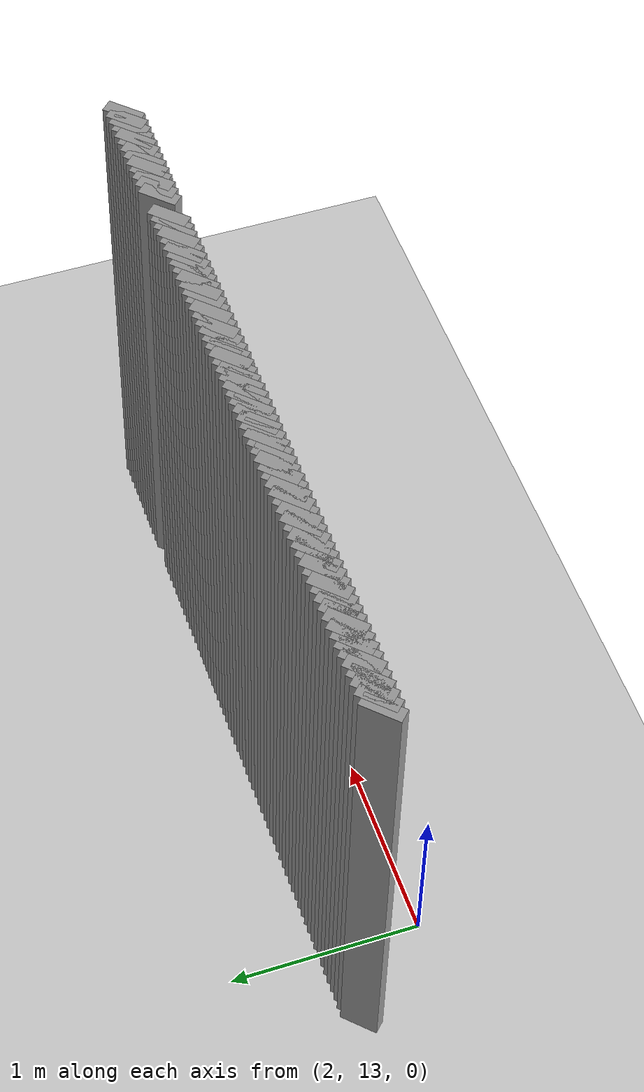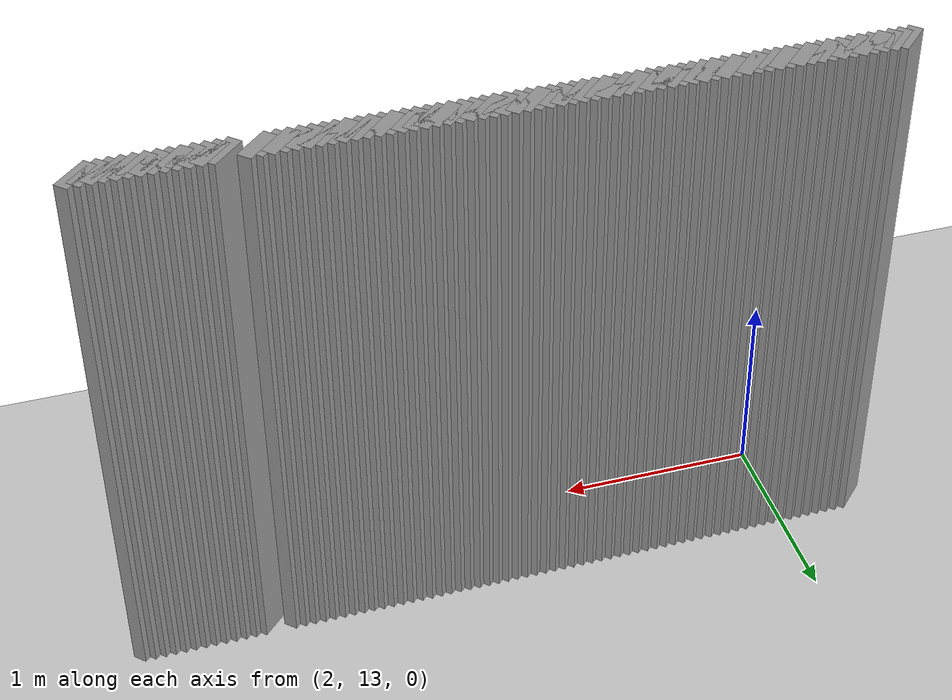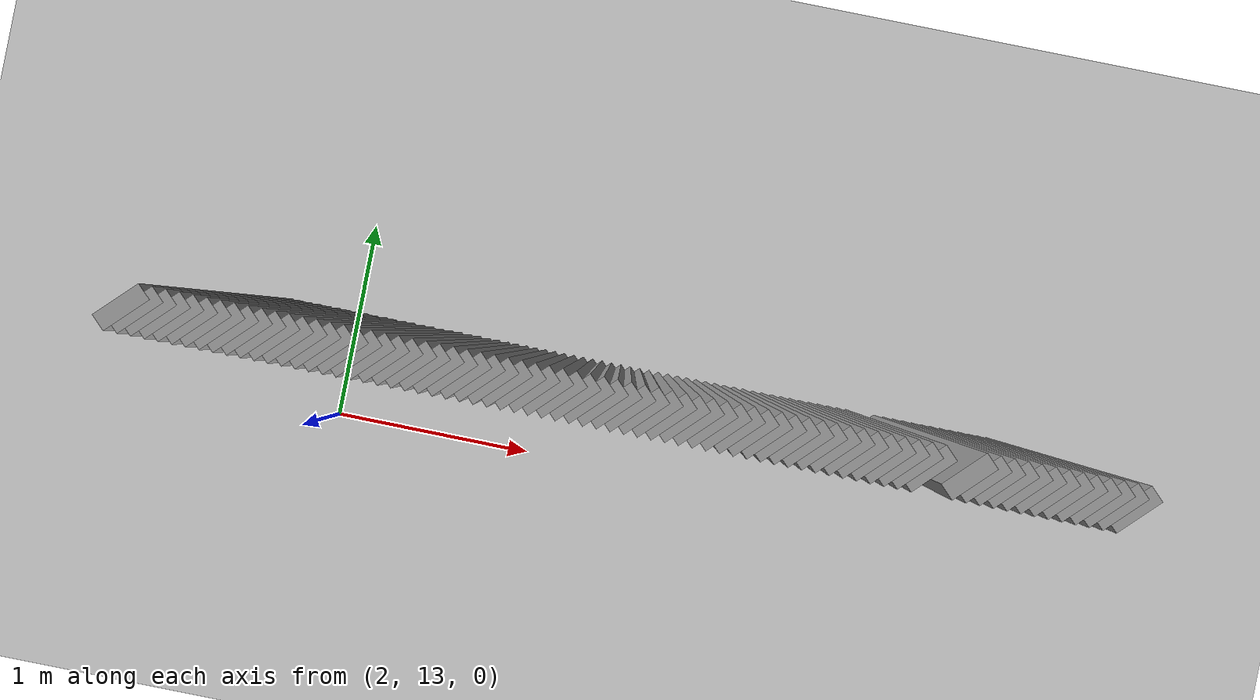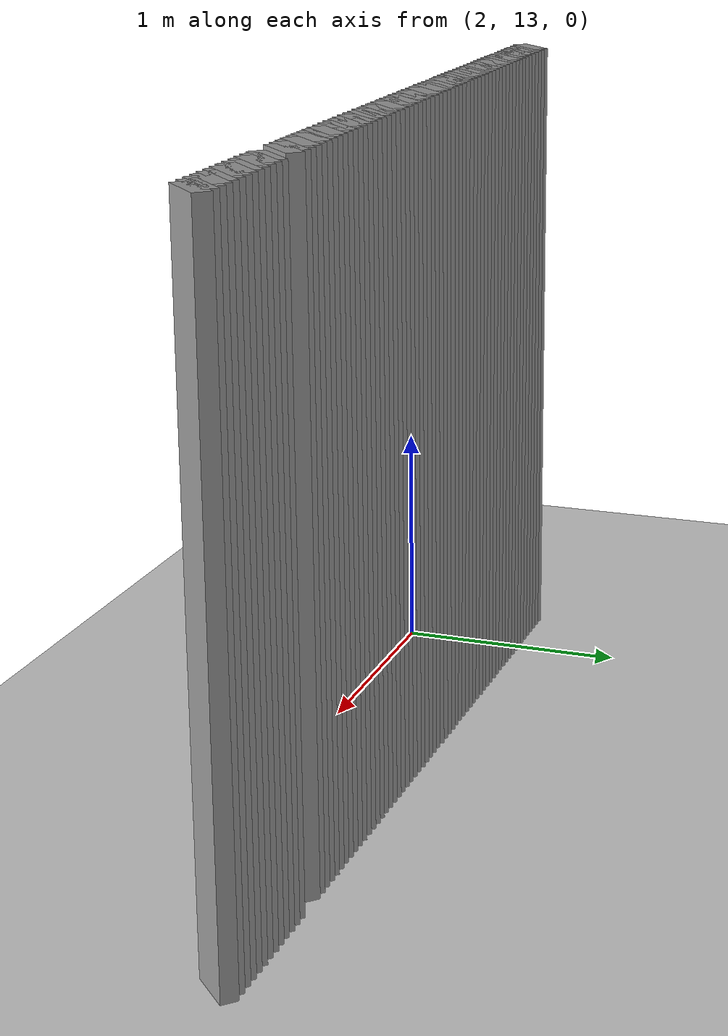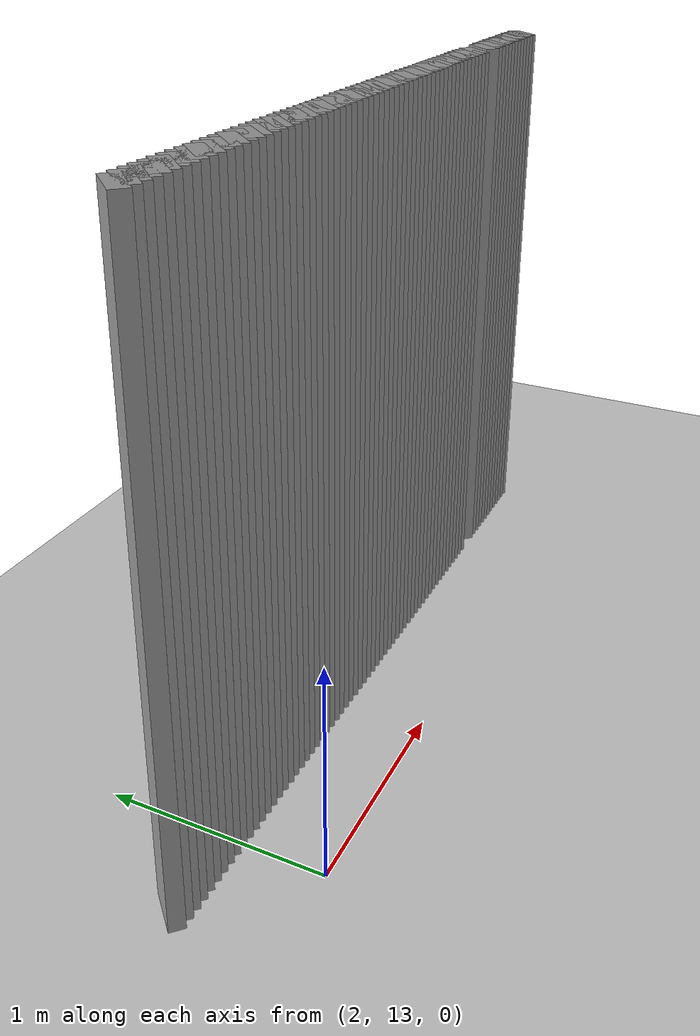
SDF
<sdf version="1.5">
 <world name="default">
  <include><uri>model://ground_plane</uri></include>
  <include><uri>model://sun</uri></include>
  <model name="grey_wall_1037">
   <static>1</static>
   <link name="link">
    <pose>1.6 13.450000000000001  1.4 0 0 -0.7853981633974572</pose>
    <collision name="collision">
     <geometry><box><size>0.07071067811865513 .2  2.8</size></box></geometry>
    </collision>
    <visual name="visual">
     <cast_shadows>0</cast_shadows>
     <geometry><box><size>0.07071067811865513 .2  2.8</size></box></geometry>
     <material>
      <script>
       <uri>model://grey_wall/materials/scripts</uri>
       <uri>model://grey_wall/materials/textures</uri>
       <name>vrc/grey_wall</name>
      </script>
     </material>
    </visual>
   </link>
  </model>
  <model name="grey_wall_1038">
   <static>1</static>
   <link name="link">
    <pose>1.6500000000000001 13.450000000000001  1.4 0 0 -0.7853981633974572</pose>
    <collision name="collision">
     <geometry><box><size>0.07071067811865513 .2  2.8</size></box></geometry>
    </collision>
    <visual name="visual">
     <cast_shadows>0</cast_shadows>
     <geometry><box><size>0.07071067811865513 .2  2.8</size></box></geometry>
     <material>
      <script>
       <uri>model://grey_wall/materials/scripts</uri>
       <uri>model://grey_wall/materials/textures</uri>
       <name>vrc/grey_wall</name>
      </script>
     </material>
    </visual>
   </link>
  </model>
  <model name="grey_wall_1039">
   <static>1</static>
   <link name="link">
    <pose>1.7000000000000002 13.450000000000001  1.4 0 0 -0.7853981633974572</pose>
    <collision name="collision">
     <geometry><box><size>0.07071067811865513 .2  2.8</size></box></geometry>
    </collision>
    <visual name="visual">
     <cast_shadows>0</cast_shadows>
     <geometry><box><size>0.07071067811865513 .2  2.8</size></box></geometry>
     <material>
      <script>
       <uri>model://grey_wall/materials/scripts</uri>
       <uri>model://grey_wall/materials/textures</uri>
       <name>vrc/grey_wall</name>
      </script>
     </material>
    </visual>
   </link>
  </model>
  <model name="grey_wall_1040">
   <static>1</static>
   <link name="link">
    <pose>1.75 13.450000000000001  1.4 0 0 -0.7853981633974572</pose>
    <collision name="collision">
     <geometry><box><size>0.07071067811865513 .2  2.8</size></box></geometry>
    </collision>
    <visual name="visual">
     <cast_shadows>0</cast_shadows>
     <geometry><box><size>0.07071067811865513 .2  2.8</size></box></geometry>
     <material>
      <script>
       <uri>model://grey_wall/materials/scripts</uri>
       <uri>model://grey_wall/materials/textures</uri>
       <name>vrc/grey_wall</name>
      </script>
     </material>
    </visual>
   </link>
  </model>
  <model name="grey_wall_1041">
   <static>1</static>
   <link name="link">
    <pose>1.8 13.450000000000001  1.4 0 0 -0.7853981633974572</pose>
    <collision name="collision">
     <geometry><box><size>0.07071067811865513 .2  2.8</size></box></geometry>
    </collision>
    <visual name="visual">
     <cast_shadows>0</cast_shadows>
     <geometry><box><size>0.07071067811865513 .2  2.8</size></box></geometry>
     <material>
      <script>
       <uri>model://grey_wall/materials/scripts</uri>
       <uri>model://grey_wall/materials/textures</uri>
       <name>vrc/grey_wall</name>
      </script>
     </material>
    </visual>
   </link>
  </model>
  <model name="grey_wall_1042">
   <static>1</static>
   <link name="link">
    <pose>1.85 13.450000000000001  1.4 0 0 -0.7853981633974572</pose>
    <collision name="collision">
     <geometry><box><size>0.07071067811865513 .2  2.8</size></box></geometry>
    </collision>
    <visual name="visual">
     <cast_shadows>0</cast_shadows>
     <geometry><box><size>0.07071067811865513 .2  2.8</size></box></geometry>
     <material>
      <script>
       <uri>model://grey_wall/materials/scripts</uri>
       <uri>model://grey_wall/materials/textures</uri>
       <name>vrc/grey_wall</name>
      </script>
     </material>
    </visual>
   </link>
  </model>
  <model name="grey_wall_1043">
   <static>1</static>
   <link name="link">
    <pose>1.9000000000000001 13.450000000000001  1.4 0 0 -0.7853981633974572</pose>
    <collision name="collision">
     <geometry><box><size>0.07071067811865513 .2  2.8</size></box></geometry>
    </collision>
    <visual name="visual">
     <cast_shadows>0</cast_shadows>
     <geometry><box><size>0.07071067811865513 .2  2.8</size></box></geometry>
     <material>
      <script>
       <uri>model://grey_wall/materials/scripts</uri>
       <uri>model://grey_wall/materials/textures</uri>
       <name>vrc/grey_wall</name>
      </script>
     </material>
    </visual>
   </link>
  </model>
  <model name="grey_wall_1044">
   <static>1</static>
   <link name="link">
    <pose>1.9500000000000002 13.450000000000001  1.4 0 0 -0.7853981633974572</pose>
    <collision name="collision">
     <geometry><box><size>0.07071067811865513 .2  2.8</size></box></geometry>
    </collision>
    <visual name="visual">
     <cast_shadows>0</cast_shadows>
     <geometry><box><size>0.07071067811865513 .2  2.8</size></box></geometry>
     <material>
      <script>
       <uri>model://grey_wall/materials/scripts</uri>
       <uri>model://grey_wall/materials/textures</uri>
       <name>vrc/grey_wall</name>
      </script>
     </material>
    </visual>
   </link>
  </model>
  <model name="grey_wall_1045">
   <static>1</static>
   <link name="link">
    <pose>2.0 13.450000000000001  1.4 0 0 -0.7853981633974572</pose>
    <collision name="collision">
     <geometry><box><size>0.07071067811865513 .2  2.8</size></box></geometry>
    </collision>
    <visual name="visual">
     <cast_shadows>0</cast_shadows>
     <geometry><box><size>0.07071067811865513 .2  2.8</size></box></geometry>
     <material>
      <script>
       <uri>model://grey_wall/materials/scripts</uri>
       <uri>model://grey_wall/materials/textures</uri>
       <name>vrc/grey_wall</name>
      </script>
     </material>
    </visual>
   </link>
  </model>
  <model name="grey_wall_1046">
   <static>1</static>
   <link name="link">
    <pose>2.0500000000000003 13.450000000000001  1.4 0 0 -0.7853981633974572</pose>
    <collision name="collision">
     <geometry><box><size>0.07071067811865513 .2  2.8</size></box></geometry>
    </collision>
    <visual name="visual">
     <cast_shadows>0</cast_shadows>
     <geometry><box><size>0.07071067811865513 .2  2.8</size></box></geometry>
     <material>
      <script>
       <uri>model://grey_wall/materials/scripts</uri>
       <uri>model://grey_wall/materials/textures</uri>
       <name>vrc/grey_wall</name>
      </script>
     </material>
    </visual>
   </link>
  </model>
  <model name="grey_wall_1047">
   <static>1</static>
   <link name="link">
    <pose>2.1 13.450000000000001  1.4 0 0 -0.7853981633974572</pose>
    <collision name="collision">
     <geometry><box><size>0.07071067811865513 .2  2.8</size></box></geometry>
    </collision>
    <visual name="visual">
     <cast_shadows>0</cast_shadows>
     <geometry><box><size>0.07071067811865513 .2  2.8</size></box></geometry>
     <material>
      <script>
       <uri>model://grey_wall/materials/scripts</uri>
       <uri>model://grey_wall/materials/textures</uri>
       <name>vrc/grey_wall</name>
      </script>
     </material>
    </visual>
   </link>
  </model>
  <model name="grey_wall_1048">
   <static>1</static>
   <link name="link">
    <pose>2.15 13.450000000000001  1.4 0 0 -0.7853981633974572</pose>
    <collision name="collision">
     <geometry><box><size>0.07071067811865513 .2  2.8</size></box></geometry>
    </collision>
    <visual name="visual">
     <cast_shadows>0</cast_shadows>
     <geometry><box><size>0.07071067811865513 .2  2.8</size></box></geometry>
     <material>
      <script>
       <uri>model://grey_wall/materials/scripts</uri>
       <uri>model://grey_wall/materials/textures</uri>
       <name>vrc/grey_wall</name>
      </script>
     </material>
    </visual>
   </link>
  </model>
  <model name="grey_wall_1049">
   <static>1</static>
   <link name="link">
    <pose>2.2 13.450000000000001  1.4 0 0 -0.7853981633974572</pose>
    <collision name="collision">
     <geometry><box><size>0.07071067811865513 .2  2.8</size></box></geometry>
    </collision>
    <visual name="visual">
     <cast_shadows>0</cast_shadows>
     <geometry><box><size>0.07071067811865513 .2  2.8</size></box></geometry>
     <material>
      <script>
       <uri>model://grey_wall/materials/scripts</uri>
       <uri>model://grey_wall/materials/textures</uri>
       <name>vrc/grey_wall</name>
      </script>
     </material>
    </visual>
   </link>
  </model>
  <model name="grey_wall_1050">
   <static>1</static>
   <link name="link">
    <pose>2.25 13.450000000000001  1.4 0 0 -0.7853981633974572</pose>
    <collision name="collision">
     <geometry><box><size>0.07071067811865513 .2  2.8</size></box></geometry>
    </collision>
    <visual name="visual">
     <cast_shadows>0</cast_shadows>
     <geometry><box><size>0.07071067811865513 .2  2.8</size></box></geometry>
     <material>
      <script>
       <uri>model://grey_wall/materials/scripts</uri>
       <uri>model://grey_wall/materials/textures</uri>
       <name>vrc/grey_wall</name>
      </script>
     </material>
    </visual>
   </link>
  </model>
  <model name="grey_wall_1051">
   <static>1</static>
   <link name="link">
    <pose>2.3000000000000003 13.450000000000001  1.4 0 0 -0.7853981633974572</pose>
    <collision name="collision">
     <geometry><box><size>0.07071067811865513 .2  2.8</size></box></geometry>
    </collision>
    <visual name="visual">
     <cast_shadows>0</cast_shadows>
     <geometry><box><size>0.07071067811865513 .2  2.8</size></box></geometry>
     <material>
      <script>
       <uri>model://grey_wall/materials/scripts</uri>
       <uri>model://grey_wall/materials/textures</uri>
       <name>vrc/grey_wall</name>
      </script>
     </material>
    </visual>
   </link>
  </model>
  <model name="grey_wall_1052">
   <static>1</static>
   <link name="link">
    <pose>2.35 13.450000000000001  1.4 0 0 -0.7853981633974572</pose>
    <collision name="collision">
     <geometry><box><size>0.07071067811865513 .2  2.8</size></box></geometry>
    </collision>
    <visual name="visual">
     <cast_shadows>0</cast_shadows>
     <geometry><box><size>0.07071067811865513 .2  2.8</size></box></geometry>
     <material>
      <script>
       <uri>model://grey_wall/materials/scripts</uri>
       <uri>model://grey_wall/materials/textures</uri>
       <name>vrc/grey_wall</name>
      </script>
     </material>
    </visual>
   </link>
  </model>
  <model name="grey_wall_1053">
   <static>1</static>
   <link name="link">
    <pose>2.4000000000000004 13.450000000000001  1.4 0 0 -0.7853981633974572</pose>
    <collision name="collision">
     <geometry><box><size>0.07071067811865513 .2  2.8</size></box></geometry>
    </collision>
    <visual name="visual">
     <cast_shadows>0</cast_shadows>
     <geometry><box><size>0.07071067811865513 .2  2.8</size></box></geometry>
     <material>
      <script>
       <uri>model://grey_wall/materials/scripts</uri>
       <uri>model://grey_wall/materials/textures</uri>
       <name>vrc/grey_wall</name>
      </script>
     </material>
    </visual>
   </link>
  </model>
  <model name="grey_wall_1054">
   <static>1</static>
   <link name="link">
    <pose>2.45 13.450000000000001  1.4 0 0 -0.7853981633974572</pose>
    <collision name="collision">
     <geometry><box><size>0.07071067811865513 .2  2.8</size></box></geometry>
    </collision>
    <visual name="visual">
     <cast_shadows>0</cast_shadows>
     <geometry><box><size>0.07071067811865513 .2  2.8</size></box></geometry>
     <material>
      <script>
       <uri>model://grey_wall/materials/scripts</uri>
       <uri>model://grey_wall/materials/textures</uri>
       <name>vrc/grey_wall</name>
      </script>
     </material>
    </visual>
   </link>
  </model>
  <model name="grey_wall_1055">
   <static>1</static>
   <link name="link">
    <pose>2.5 13.450000000000001  1.4 0 0 -0.7853981633974572</pose>
    <collision name="collision">
     <geometry><box><size>0.07071067811865513 .2  2.8</size></box></geometry>
    </collision>
    <visual name="visual">
     <cast_shadows>0</cast_shadows>
     <geometry><box><size>0.07071067811865513 .2  2.8</size></box></geometry>
     <material>
      <script>
       <uri>model://grey_wall/materials/scripts</uri>
       <uri>model://grey_wall/materials/textures</uri>
       <name>vrc/grey_wall</name>
      </script>
     </material>
    </visual>
   </link>
  </model>
  <model name="grey_wall_1056">
   <static>1</static>
   <link name="link">
    <pose>2.5500000000000003 13.450000000000001  1.4 0 0 -0.7853981633974572</pose>
    <collision name="collision">
     <geometry><box><size>0.07071067811865513 .2  2.8</size></box></geometry>
    </collision>
    <visual name="visual">
     <cast_shadows>0</cast_shadows>
     <geometry><box><size>0.07071067811865513 .2  2.8</size></box></geometry>
     <material>
      <script>
       <uri>model://grey_wall/materials/scripts</uri>
       <uri>model://grey_wall/materials/textures</uri>
       <name>vrc/grey_wall</name>
      </script>
     </material>
    </visual>
   </link>
  </model>
  <model name="grey_wall_1057">
   <static>1</static>
   <link name="link">
    <pose>2.6 13.450000000000001  1.4 0 0 -0.7853981633974572</pose>
    <collision name="collision">
     <geometry><box><size>0.07071067811865513 .2  2.8</size></box></geometry>
    </collision>
    <visual name="visual">
     <cast_shadows>0</cast_shadows>
     <geometry><box><size>0.07071067811865513 .2  2.8</size></box></geometry>
     <material>
      <script>
       <uri>model://grey_wall/materials/scripts</uri>
       <uri>model://grey_wall/materials/textures</uri>
       <name>vrc/grey_wall</name>
      </script>
     </material>
    </visual>
   </link>
  </model>
  <model name="grey_wall_1058">
   <static>1</static>
   <link name="link">
    <pose>2.6500000000000004 13.450000000000001  1.4 0 0 -0.7853981633974572</pose>
    <collision name="collision">
     <geometry><box><size>0.07071067811865513 .2  2.8</size></box></geometry>
    </collision>
    <visual name="visual">
     <cast_shadows>0</cast_shadows>
     <geometry><box><size>0.07071067811865513 .2  2.8</size></box></geometry>
     <material>
      <script>
       <uri>model://grey_wall/materials/scripts</uri>
       <uri>model://grey_wall/materials/textures</uri>
       <name>vrc/grey_wall</name>
      </script>
     </material>
    </visual>
   </link>
  </model>
  <model name="grey_wall_1059">
   <static>1</static>
   <link name="link">
    <pose>2.7 13.450000000000001  1.4 0 0 -0.7853981633974572</pose>
    <collision name="collision">
     <geometry><box><size>0.07071067811865513 .2  2.8</size></box></geometry>
    </collision>
    <visual name="visual">
     <cast_shadows>0</cast_shadows>
     <geometry><box><size>0.07071067811865513 .2  2.8</size></box></geometry>
     <material>
      <script>
       <uri>model://grey_wall/materials/scripts</uri>
       <uri>model://grey_wall/materials/textures</uri>
       <name>vrc/grey_wall</name>
      </script>
     </material>
    </visual>
   </link>
  </model>
  <model name="grey_wall_1060">
   <static>1</static>
   <link name="link">
    <pose>2.75 13.450000000000001  1.4 0 0 -0.7853981633974572</pose>
    <collision name="collision">
     <geometry><box><size>0.07071067811865513 .2  2.8</size></box></geometry>
    </collision>
    <visual name="visual">
     <cast_shadows>0</cast_shadows>
     <geometry><box><size>0.07071067811865513 .2  2.8</size></box></geometry>
     <material>
      <script>
       <uri>model://grey_wall/materials/scripts</uri>
       <uri>model://grey_wall/materials/textures</uri>
       <name>vrc/grey_wall</name>
      </script>
     </material>
    </visual>
   </link>
  </model>
  <model name="grey_wall_1061">
   <static>1</static>
   <link name="link">
    <pose>2.8000000000000003 13.450000000000001  1.4 0 0 -0.7853981633974572</pose>
    <collision name="collision">
     <geometry><box><size>0.07071067811865513 .2  2.8</size></box></geometry>
    </collision>
    <visual name="visual">
     <cast_shadows>0</cast_shadows>
     <geometry><box><size>0.07071067811865513 .2  2.8</size></box></geometry>
     <material>
      <script>
       <uri>model://grey_wall/materials/scripts</uri>
       <uri>model://grey_wall/materials/textures</uri>
       <name>vrc/grey_wall</name>
      </script>
     </material>
    </visual>
   </link>
  </model>
  <model name="grey_wall_1062">
   <static>1</static>
   <link name="link">
    <pose>2.85 13.450000000000001  1.4 0 0 -0.7853981633974572</pose>
    <collision name="collision">
     <geometry><box><size>0.07071067811865513 .2  2.8</size></box></geometry>
    </collision>
    <visual name="visual">
     <cast_shadows>0</cast_shadows>
     <geometry><box><size>0.07071067811865513 .2  2.8</size></box></geometry>
     <material>
      <script>
       <uri>model://grey_wall/materials/scripts</uri>
       <uri>model://grey_wall/materials/textures</uri>
       <name>vrc/grey_wall</name>
      </script>
     </material>
    </visual>
   </link>
  </model>
  <model name="grey_wall_1063">
   <static>1</static>
   <link name="link">
    <pose>2.9000000000000004 13.450000000000001  1.4 0 0 -0.7853981633974572</pose>
    <collision name="collision">
     <geometry><box><size>0.07071067811865513 .2  2.8</size></box></geometry>
    </collision>
    <visual name="visual">
     <cast_shadows>0</cast_shadows>
     <geometry><box><size>0.07071067811865513 .2  2.8</size></box></geometry>
     <material>
      <script>
       <uri>model://grey_wall/materials/scripts</uri>
       <uri>model://grey_wall/materials/textures</uri>
       <name>vrc/grey_wall</name>
      </script>
     </material>
    </visual>
   </link>
  </model>
  <model name="grey_wall_1064">
   <static>1</static>
   <link name="link">
    <pose>2.95 13.450000000000001  1.4 0 0 -0.7853981633974572</pose>
    <collision name="collision">
     <geometry><box><size>0.07071067811865513 .2  2.8</size></box></geometry>
    </collision>
    <visual name="visual">
     <cast_shadows>0</cast_shadows>
     <geometry><box><size>0.07071067811865513 .2  2.8</size></box></geometry>
     <material>
      <script>
       <uri>model://grey_wall/materials/scripts</uri>
       <uri>model://grey_wall/materials/textures</uri>
       <name>vrc/grey_wall</name>
      </script>
     </material>
    </visual>
   </link>
  </model>
  <model name="grey_wall_1065">
   <static>1</static>
   <link name="link">
    <pose>3.0 13.450000000000001  1.4 0 0 -0.7853981633974572</pose>
    <collision name="collision">
     <geometry><box><size>0.07071067811865513 .2  2.8</size></box></geometry>
    </collision>
    <visual name="visual">
     <cast_shadows>0</cast_shadows>
     <geometry><box><size>0.07071067811865513 .2  2.8</size></box></geometry>
     <material>
      <script>
       <uri>model://grey_wall/materials/scripts</uri>
       <uri>model://grey_wall/materials/textures</uri>
       <name>vrc/grey_wall</name>
      </script>
     </material>
    </visual>
   </link>
  </model>
  <model name="grey_wall_1066">
   <static>1</static>
   <link name="link">
    <pose>3.0500000000000003 13.450000000000001  1.4 0 0 -0.7853981633974572</pose>
    <collision name="collision">
     <geometry><box><size>0.07071067811865513 .2  2.8</size></box></geometry>
    </collision>
    <visual name="visual">
     <cast_shadows>0</cast_shadows>
     <geometry><box><size>0.07071067811865513 .2  2.8</size></box></geometry>
     <material>
      <script>
       <uri>model://grey_wall/materials/scripts</uri>
       <uri>model://grey_wall/materials/textures</uri>
       <name>vrc/grey_wall</name>
      </script>
     </material>
    </visual>
   </link>
  </model>
  <model name="grey_wall_1067">
   <static>1</static>
   <link name="link">
    <pose>3.1 13.450000000000001  1.4 0 0 -0.7853981633974572</pose>
    <collision name="collision">
     <geometry><box><size>0.07071067811865513 .2  2.8</size></box></geometry>
    </collision>
    <visual name="visual">
     <cast_shadows>0</cast_shadows>
     <geometry><box><size>0.07071067811865513 .2  2.8</size></box></geometry>
     <material>
      <script>
       <uri>model://grey_wall/materials/scripts</uri>
       <uri>model://grey_wall/materials/textures</uri>
       <name>vrc/grey_wall</name>
      </script>
     </material>
    </visual>
   </link>
  </model>
  <model name="grey_wall_1068">
   <static>1</static>
   <link name="link">
    <pose>3.1500000000000004 13.450000000000001  1.4 0 0 -0.7853981633974572</pose>
    <collision name="collision">
     <geometry><box><size>0.07071067811865513 .2  2.8</size></box></geometry>
    </collision>
    <visual name="visual">
     <cast_shadows>0</cast_shadows>
     <geometry><box><size>0.07071067811865513 .2  2.8</size></box></geometry>
     <material>
      <script>
       <uri>model://grey_wall/materials/scripts</uri>
       <uri>model://grey_wall/materials/textures</uri>
       <name>vrc/grey_wall</name>
      </script>
     </material>
    </visual>
   </link>
  </model>
  <model name="grey_wall_1069">
   <static>1</static>
   <link name="link">
    <pose>3.2 13.450000000000001  1.4 0 0 -0.7853981633974572</pose>
    <collision name="collision">
     <geometry><box><size>0.07071067811865513 .2  2.8</size></box></geometry>
    </collision>
    <visual name="visual">
     <cast_shadows>0</cast_shadows>
     <geometry><box><size>0.07071067811865513 .2  2.8</size></box></geometry>
     <material>
      <script>
       <uri>model://grey_wall/materials/scripts</uri>
       <uri>model://grey_wall/materials/textures</uri>
       <name>vrc/grey_wall</name>
      </script>
     </material>
    </visual>
   </link>
  </model>
  <model name="grey_wall_1070">
   <static>1</static>
   <link name="link">
    <pose>3.25 13.450000000000001  1.4 0 0 -0.7853981633974572</pose>
    <collision name="collision">
     <geometry><box><size>0.07071067811865513 .2  2.8</size></box></geometry>
    </collision>
    <visual name="visual">
     <cast_shadows>0</cast_shadows>
     <geometry><box><size>0.07071067811865513 .2  2.8</size></box></geometry>
     <material>
      <script>
       <uri>model://grey_wall/materials/scripts</uri>
       <uri>model://grey_wall/materials/textures</uri>
       <name>vrc/grey_wall</name>
      </script>
     </material>
    </visual>
   </link>
  </model>
  <model name="grey_wall_1071">
   <static>1</static>
   <link name="link">
    <pose>3.3000000000000003 13.450000000000001  1.4 0 0 -0.7853981633974572</pose>
    <collision name="collision">
     <geometry><box><size>0.07071067811865513 .2  2.8</size></box></geometry>
    </collision>
    <visual name="visual">
     <cast_shadows>0</cast_shadows>
     <geometry><box><size>0.07071067811865513 .2  2.8</size></box></geometry>
     <material>
      <script>
       <uri>model://grey_wall/materials/scripts</uri>
       <uri>model://grey_wall/materials/textures</uri>
       <name>vrc/grey_wall</name>
      </script>
     </material>
    </visual>
   </link>
  </model>
  <model name="grey_wall_1072">
   <static>1</static>
   <link name="link">
    <pose>3.35 13.450000000000001  1.4 0 0 -0.7853981633974572</pose>
    <collision name="collision">
     <geometry><box><size>0.07071067811865513 .2  2.8</size></box></geometry>
    </collision>
    <visual name="visual">
     <cast_shadows>0</cast_shadows>
     <geometry><box><size>0.07071067811865513 .2  2.8</size></box></geometry>
     <material>
      <script>
       <uri>model://grey_wall/materials/scripts</uri>
       <uri>model://grey_wall/materials/textures</uri>
       <name>vrc/grey_wall</name>
      </script>
     </material>
    </visual>
   </link>
  </model>
  <model name="grey_wall_1073">
   <static>1</static>
   <link name="link">
    <pose>3.4000000000000004 13.450000000000001  1.4 0 0 -0.7853981633974572</pose>
    <collision name="collision">
     <geometry><box><size>0.07071067811865513 .2  2.8</size></box></geometry>
    </collision>
    <visual name="visual">
     <cast_shadows>0</cast_shadows>
     <geometry><box><size>0.07071067811865513 .2  2.8</size></box></geometry>
     <material>
      <script>
       <uri>model://grey_wall/materials/scripts</uri>
       <uri>model://grey_wall/materials/textures</uri>
       <name>vrc/grey_wall</name>
      </script>
     </material>
    </visual>
   </link>
  </model>
  <model name="grey_wall_1074">
   <static>1</static>
   <link name="link">
    <pose>3.45 13.450000000000001  1.4 0 0 -0.7853981633974572</pose>
    <collision name="collision">
     <geometry><box><size>0.07071067811865513 .2  2.8</size></box></geometry>
    </collision>
    <visual name="visual">
     <cast_shadows>0</cast_shadows>
     <geometry><box><size>0.07071067811865513 .2  2.8</size></box></geometry>
     <material>
      <script>
       <uri>model://grey_wall/materials/scripts</uri>
       <uri>model://grey_wall/materials/textures</uri>
       <name>vrc/grey_wall</name>
      </script>
     </material>
    </visual>
   </link>
  </model>
  <model name="grey_wall_1075">
   <static>1</static>
   <link name="link">
    <pose>3.5 13.450000000000001  1.4 0 0 -0.7853981633974572</pose>
    <collision name="collision">
     <geometry><box><size>0.07071067811865513 .2  2.8</size></box></geometry>
    </collision>
    <visual name="visual">
     <cast_shadows>0</cast_shadows>
     <geometry><box><size>0.07071067811865513 .2  2.8</size></box></geometry>
     <material>
      <script>
       <uri>model://grey_wall/materials/scripts</uri>
       <uri>model://grey_wall/materials/textures</uri>
       <name>vrc/grey_wall</name>
      </script>
     </material>
    </visual>
   </link>
  </model>
  <model name="grey_wall_1076">
   <static>1</static>
   <link name="link">
    <pose>3.5500000000000003 13.450000000000001  1.4 0 0 -0.7853981633974572</pose>
    <collision name="collision">
     <geometry><box><size>0.07071067811865513 .2  2.8</size></box></geometry>
    </collision>
    <visual name="visual">
     <cast_shadows>0</cast_shadows>
     <geometry><box><size>0.07071067811865513 .2  2.8</size></box></geometry>
     <material>
      <script>
       <uri>model://grey_wall/materials/scripts</uri>
       <uri>model://grey_wall/materials/textures</uri>
       <name>vrc/grey_wall</name>
      </script>
     </material>
    </visual>
   </link>
  </model>
  <model name="grey_wall_1077">
   <static>1</static>
   <link name="link">
    <pose>3.6 13.450000000000001  1.4 0 0 -0.7853981633974572</pose>
    <collision name="collision">
     <geometry><box><size>0.07071067811865513 .2  2.8</size></box></geometry>
    </collision>
    <visual name="visual">
     <cast_shadows>0</cast_shadows>
     <geometry><box><size>0.07071067811865513 .2  2.8</size></box></geometry>
     <material>
      <script>
       <uri>model://grey_wall/materials/scripts</uri>
       <uri>model://grey_wall/materials/textures</uri>
       <name>vrc/grey_wall</name>
      </script>
     </material>
    </visual>
   </link>
  </model>
  <model name="grey_wall_1078">
   <static>1</static>
   <link name="link">
    <pose>3.6500000000000004 13.450000000000001  1.4 0 0 -0.7853981633974572</pose>
    <collision name="collision">
     <geometry><box><size>0.07071067811865513 .2  2.8</size></box></geometry>
    </collision>
    <visual name="visual">
     <cast_shadows>0</cast_shadows>
     <geometry><box><size>0.07071067811865513 .2  2.8</size></box></geometry>
     <material>
      <script>
       <uri>model://grey_wall/materials/scripts</uri>
       <uri>model://grey_wall/materials/textures</uri>
       <name>vrc/grey_wall</name>
      </script>
     </material>
    </visual>
   </link>
  </model>
  <model name="grey_wall_1079">
   <static>1</static>
   <link name="link">
    <pose>3.7 13.450000000000001  1.4 0 0 -0.7853981633974572</pose>
    <collision name="collision">
     <geometry><box><size>0.07071067811865513 .2  2.8</size></box></geometry>
    </collision>
    <visual name="visual">
     <cast_shadows>0</cast_shadows>
     <geometry><box><size>0.07071067811865513 .2  2.8</size></box></geometry>
     <material>
      <script>
       <uri>model://grey_wall/materials/scripts</uri>
       <uri>model://grey_wall/materials/textures</uri>
       <name>vrc/grey_wall</name>
      </script>
     </material>
    </visual>
   </link>
  </model>
  <model name="grey_wall_1080">
   <static>1</static>
   <link name="link">
    <pose>3.75 13.450000000000001  1.4 0 0 -0.7853981633974572</pose>
    <collision name="collision">
     <geometry><box><size>0.07071067811865513 .2  2.8</size></box></geometry>
    </collision>
    <visual name="visual">
     <cast_shadows>0</cast_shadows>
     <geometry><box><size>0.07071067811865513 .2  2.8</size></box></geometry>
     <material>
      <script>
       <uri>model://grey_wall/materials/scripts</uri>
       <uri>model://grey_wall/materials/textures</uri>
       <name>vrc/grey_wall</name>
      </script>
     </material>
    </visual>
   </link>
  </model>
  <model name="grey_wall_1081">
   <static>1</static>
   <link name="link">
    <pose>3.8000000000000003 13.450000000000001  1.4 0 0 -0.7853981633974572</pose>
    <collision name="collision">
     <geometry><box><size>0.07071067811865513 .2  2.8</size></box></geometry>
    </collision>
    <visual name="visual">
     <cast_shadows>0</cast_shadows>
     <geometry><box><size>0.07071067811865513 .2  2.8</size></box></geometry>
     <material>
      <script>
       <uri>model://grey_wall/materials/scripts</uri>
       <uri>model://grey_wall/materials/textures</uri>
       <name>vrc/grey_wall</name>
      </script>
     </material>
    </visual>
   </link>
  </model>
  <model name="grey_wall_1082">
   <static>1</static>
   <link name="link">
    <pose>3.85 13.450000000000001  1.4 0 0 -0.7853981633974572</pose>
    <collision name="collision">
     <geometry><box><size>0.07071067811865513 .2  2.8</size></box></geometry>
    </collision>
    <visual name="visual">
     <cast_shadows>0</cast_shadows>
     <geometry><box><size>0.07071067811865513 .2  2.8</size></box></geometry>
     <material>
      <script>
       <uri>model://grey_wall/materials/scripts</uri>
       <uri>model://grey_wall/materials/textures</uri>
       <name>vrc/grey_wall</name>
      </script>
     </material>
    </visual>
   </link>
  </model>
  <model name="grey_wall_1083">
   <static>1</static>
   <link name="link">
    <pose>3.9000000000000004 13.450000000000001  1.4 0 0 -0.7853981633974572</pose>
    <collision name="collision">
     <geometry><box><size>0.07071067811865513 .2  2.8</size></box></geometry>
    </collision>
    <visual name="visual">
     <cast_shadows>0</cast_shadows>
     <geometry><box><size>0.07071067811865513 .2  2.8</size></box></geometry>
     <material>
      <script>
       <uri>model://grey_wall/materials/scripts</uri>
       <uri>model://grey_wall/materials/textures</uri>
       <name>vrc/grey_wall</name>
      </script>
     </material>
    </visual>
   </link>
  </model>
  <model name="grey_wall_1084">
   <static>1</static>
   <link name="link">
    <pose>3.95 13.450000000000001  1.4 0 0 -0.7853981633974572</pose>
    <collision name="collision">
     <geometry><box><size>0.07071067811865513 .2  2.8</size></box></geometry>
    </collision>
    <visual name="visual">
     <cast_shadows>0</cast_shadows>
     <geometry><box><size>0.07071067811865513 .2  2.8</size></box></geometry>
     <material>
      <script>
       <uri>model://grey_wall/materials/scripts</uri>
       <uri>model://grey_wall/materials/textures</uri>
       <name>vrc/grey_wall</name>
      </script>
     </material>
    </visual>
   </link>
  </model>
  <model name="grey_wall_1085">
   <static>1</static>
   <link name="link">
    <pose>4.0 13.450000000000001  1.4 0 0 -0.7853981633974527</pose>
    <collision name="collision">
     <geometry><box><size>0.07071067811865545 .2  2.8</size></box></geometry>
    </collision>
    <visual name="visual">
     <cast_shadows>0</cast_shadows>
     <geometry><box><size>0.07071067811865545 .2  2.8</size></box></geometry>
     <material>
      <script>
       <uri>model://grey_wall/materials/scripts</uri>
       <uri>model://grey_wall/materials/textures</uri>
       <name>vrc/grey_wall</name>
      </script>
     </material>
    </visual>
   </link>
  </model>
  <model name="grey_wall_1086">
   <static>1</static>
   <link name="link">
    <pose>4.05 13.450000000000001  1.4 0 0 -0.7853981633974483</pose>
    <collision name="collision">
     <geometry><box><size>0.07071067811865576 .2  2.8</size></box></geometry>
    </collision>
    <visual name="visual">
     <cast_shadows>0</cast_shadows>
     <geometry><box><size>0.07071067811865576 .2  2.8</size></box></geometry>
     <material>
      <script>
       <uri>model://grey_wall/materials/scripts</uri>
       <uri>model://grey_wall/materials/textures</uri>
       <name>vrc/grey_wall</name>
      </script>
     </material>
    </visual>
   </link>
  </model>
  <model name="grey_wall_1087">
   <static>1</static>
   <link name="link">
    <pose>4.1000000000000005 13.450000000000001  1.4 0 0 -0.7853981633974483</pose>
    <collision name="collision">
     <geometry><box><size>0.07071067811865576 .2  2.8</size></box></geometry>
    </collision>
    <visual name="visual">
     <cast_shadows>0</cast_shadows>
     <geometry><box><size>0.07071067811865576 .2  2.8</size></box></geometry>
     <material>
      <script>
       <uri>model://grey_wall/materials/scripts</uri>
       <uri>model://grey_wall/materials/textures</uri>
       <name>vrc/grey_wall</name>
      </script>
     </material>
    </visual>
   </link>
  </model>
  <model name="grey_wall_1088">
   <static>1</static>
   <link name="link">
    <pose>4.15 13.450000000000001  1.4 0 0 -0.7853981633974483</pose>
    <collision name="collision">
     <geometry><box><size>0.07071067811865576 .2  2.8</size></box></geometry>
    </collision>
    <visual name="visual">
     <cast_shadows>0</cast_shadows>
     <geometry><box><size>0.07071067811865576 .2  2.8</size></box></geometry>
     <material>
      <script>
       <uri>model://grey_wall/materials/scripts</uri>
       <uri>model://grey_wall/materials/textures</uri>
       <name>vrc/grey_wall</name>
      </script>
     </material>
    </visual>
   </link>
  </model>
  <model name="grey_wall_1089">
   <static>1</static>
   <link name="link">
    <pose>4.2 13.450000000000001  1.4 0 0 -0.7853981633974483</pose>
    <collision name="collision">
     <geometry><box><size>0.07071067811865576 .2  2.8</size></box></geometry>
    </collision>
    <visual name="visual">
     <cast_shadows>0</cast_shadows>
     <geometry><box><size>0.07071067811865576 .2  2.8</size></box></geometry>
     <material>
      <script>
       <uri>model://grey_wall/materials/scripts</uri>
       <uri>model://grey_wall/materials/textures</uri>
       <name>vrc/grey_wall</name>
      </script>
     </material>
    </visual>
   </link>
  </model>
  <model name="grey_wall_1090">
   <static>1</static>
   <link name="link">
    <pose>4.25 13.450000000000001  1.4 0 0 -0.7853981633974483</pose>
    <collision name="collision">
     <geometry><box><size>0.07071067811865576 .2  2.8</size></box></geometry>
    </collision>
    <visual name="visual">
     <cast_shadows>0</cast_shadows>
     <geometry><box><size>0.07071067811865576 .2  2.8</size></box></geometry>
     <material>
      <script>
       <uri>model://grey_wall/materials/scripts</uri>
       <uri>model://grey_wall/materials/textures</uri>
       <name>vrc/grey_wall</name>
      </script>
     </material>
    </visual>
   </link>
  </model>
  <model name="grey_wall_1091">
   <static>1</static>
   <link name="link">
    <pose>4.3 13.450000000000001  1.4 0 0 -0.7853981633974483</pose>
    <collision name="collision">
     <geometry><box><size>0.07071067811865576 .2  2.8</size></box></geometry>
    </collision>
    <visual name="visual">
     <cast_shadows>0</cast_shadows>
     <geometry><box><size>0.07071067811865576 .2  2.8</size></box></geometry>
     <material>
      <script>
       <uri>model://grey_wall/materials/scripts</uri>
       <uri>model://grey_wall/materials/textures</uri>
       <name>vrc/grey_wall</name>
      </script>
     </material>
    </visual>
   </link>
  </model>
  <model name="grey_wall_1092">
   <static>1</static>
   <link name="link">
    <pose>4.3500000000000005 13.450000000000001  1.4 0 0 -0.7853981633974483</pose>
    <collision name="collision">
     <geometry><box><size>0.07071067811865576 .2  2.8</size></box></geometry>
    </collision>
    <visual name="visual">
     <cast_shadows>0</cast_shadows>
     <geometry><box><size>0.07071067811865576 .2  2.8</size></box></geometry>
     <material>
      <script>
       <uri>model://grey_wall/materials/scripts</uri>
       <uri>model://grey_wall/materials/textures</uri>
       <name>vrc/grey_wall</name>
      </script>
     </material>
    </visual>
   </link>
  </model>
  <model name="grey_wall_1093">
   <static>1</static>
   <link name="link">
    <pose>4.4 13.450000000000001  1.4 0 0 -0.7853981633974483</pose>
    <collision name="collision">
     <geometry><box><size>0.07071067811865576 .2  2.8</size></box></geometry>
    </collision>
    <visual name="visual">
     <cast_shadows>0</cast_shadows>
     <geometry><box><size>0.07071067811865576 .2  2.8</size></box></geometry>
     <material>
      <script>
       <uri>model://grey_wall/materials/scripts</uri>
       <uri>model://grey_wall/materials/textures</uri>
       <name>vrc/grey_wall</name>
      </script>
     </material>
    </visual>
   </link>
  </model>
  <model name="grey_wall_1094">
   <static>1</static>
   <link name="link">
    <pose>4.45 13.450000000000001  1.4 0 0 -0.7853981633974483</pose>
    <collision name="collision">
     <geometry><box><size>0.07071067811865576 .2  2.8</size></box></geometry>
    </collision>
    <visual name="visual">
     <cast_shadows>0</cast_shadows>
     <geometry><box><size>0.07071067811865576 .2  2.8</size></box></geometry>
     <material>
      <script>
       <uri>model://grey_wall/materials/scripts</uri>
       <uri>model://grey_wall/materials/textures</uri>
       <name>vrc/grey_wall</name>
      </script>
     </material>
    </visual>
   </link>
  </model>
  <model name="grey_wall_1095">
   <static>1</static>
   <link name="link">
    <pose>4.5 13.450000000000001  1.4 0 0 -0.7853981633974483</pose>
    <collision name="collision">
     <geometry><box><size>0.07071067811865576 .2  2.8</size></box></geometry>
    </collision>
    <visual name="visual">
     <cast_shadows>0</cast_shadows>
     <geometry><box><size>0.07071067811865576 .2  2.8</size></box></geometry>
     <material>
      <script>
       <uri>model://grey_wall/materials/scripts</uri>
       <uri>model://grey_wall/materials/textures</uri>
       <name>vrc/grey_wall</name>
      </script>
     </material>
    </visual>
   </link>
  </model>
  <model name="grey_wall_1096">
   <static>1</static>
   <link name="link">
    <pose>4.55 13.450000000000001  1.4 0 0 -0.7853981633974483</pose>
    <collision name="collision">
     <geometry><box><size>0.07071067811865576 .2  2.8</size></box></geometry>
    </collision>
    <visual name="visual">
     <cast_shadows>0</cast_shadows>
     <geometry><box><size>0.07071067811865576 .2  2.8</size></box></geometry>
     <material>
      <script>
       <uri>model://grey_wall/materials/scripts</uri>
       <uri>model://grey_wall/materials/textures</uri>
       <name>vrc/grey_wall</name>
      </script>
     </material>
    </visual>
   </link>
  </model>
  <model name="grey_wall_1097">
   <static>1</static>
   <link name="link">
    <pose>4.7 13.450000000000001  1.4 0 0 -0.7853981633974483</pose>
    <collision name="collision">
     <geometry><box><size>0.07071067811865576 .2  2.8</size></box></geometry>
    </collision>
    <visual name="visual">
     <cast_shadows>0</cast_shadows>
     <geometry><box><size>0.07071067811865576 .2  2.8</size></box></geometry>
     <material>
      <script>
       <uri>model://grey_wall/materials/scripts</uri>
       <uri>model://grey_wall/materials/textures</uri>
       <name>vrc/grey_wall</name>
      </script>
     </material>
    </visual>
   </link>
  </model>
  <model name="grey_wall_1098">
   <static>1</static>
   <link name="link">
    <pose>4.75 13.450000000000001  1.4 0 0 -0.7853981633974483</pose>
    <collision name="collision">
     <geometry><box><size>0.07071067811865576 .2  2.8</size></box></geometry>
    </collision>
    <visual name="visual">
     <cast_shadows>0</cast_shadows>
     <geometry><box><size>0.07071067811865576 .2  2.8</size></box></geometry>
     <material>
      <script>
       <uri>model://grey_wall/materials/scripts</uri>
       <uri>model://grey_wall/materials/textures</uri>
       <name>vrc/grey_wall</name>
      </script>
     </material>
    </visual>
   </link>
  </model>
  <model name="grey_wall_1099">
   <static>1</static>
   <link name="link">
    <pose>4.800000000000001 13.450000000000001  1.4 0 0 -0.7853981633974483</pose>
    <collision name="collision">
     <geometry><box><size>0.07071067811865576 .2  2.8</size></box></geometry>
    </collision>
    <visual name="visual">
     <cast_shadows>0</cast_shadows>
     <geometry><box><size>0.07071067811865576 .2  2.8</size></box></geometry>
     <material>
      <script>
       <uri>model://grey_wall/materials/scripts</uri>
       <uri>model://grey_wall/materials/textures</uri>
       <name>vrc/grey_wall</name>
      </script>
     </material>
    </visual>
   </link>
  </model>
  <model name="grey_wall_1100">
   <static>1</static>
   <link name="link">
    <pose>4.8500000000000005 13.450000000000001  1.4 0 0 -0.7853981633974483</pose>
    <collision name="collision">
     <geometry><box><size>0.07071067811865576 .2  2.8</size></box></geometry>
    </collision>
    <visual name="visual">
     <cast_shadows>0</cast_shadows>
     <geometry><box><size>0.07071067811865576 .2  2.8</size></box></geometry>
     <material>
      <script>
       <uri>model://grey_wall/materials/scripts</uri>
       <uri>model://grey_wall/materials/textures</uri>
       <name>vrc/grey_wall</name>
      </script>
     </material>
    </visual>
   </link>
  </model>
  <model name="grey_wall_1101">
   <static>1</static>
   <link name="link">
    <pose>4.9 13.450000000000001  1.4 0 0 -0.7853981633974483</pose>
    <collision name="collision">
     <geometry><box><size>0.07071067811865576 .2  2.8</size></box></geometry>
    </collision>
    <visual name="visual">
     <cast_shadows>0</cast_shadows>
     <geometry><box><size>0.07071067811865576 .2  2.8</size></box></geometry>
     <material>
      <script>
       <uri>model://grey_wall/materials/scripts</uri>
       <uri>model://grey_wall/materials/textures</uri>
       <name>vrc/grey_wall</name>
      </script>
     </material>
    </visual>
   </link>
  </model>
  <model name="grey_wall_1102">
   <static>1</static>
   <link name="link">
    <pose>4.95 13.450000000000001  1.4 0 0 -0.7853981633974483</pose>
    <collision name="collision">
     <geometry><box><size>0.07071067811865576 .2  2.8</size></box></geometry>
    </collision>
    <visual name="visual">
     <cast_shadows>0</cast_shadows>
     <geometry><box><size>0.07071067811865576 .2  2.8</size></box></geometry>
     <material>
      <script>
       <uri>model://grey_wall/materials/scripts</uri>
       <uri>model://grey_wall/materials/textures</uri>
       <name>vrc/grey_wall</name>
      </script>
     </material>
    </visual>
   </link>
  </model>
  <model name="grey_wall_1103">
   <static>1</static>
   <link name="link">
    <pose>5.0 13.450000000000001  1.4 0 0 -0.7853981633974483</pose>
    <collision name="collision">
     <geometry><box><size>0.07071067811865576 .2  2.8</size></box></geometry>
    </collision>
    <visual name="visual">
     <cast_shadows>0</cast_shadows>
     <geometry><box><size>0.07071067811865576 .2  2.8</size></box></geometry>
     <material>
      <script>
       <uri>model://grey_wall/materials/scripts</uri>
       <uri>model://grey_wall/materials/textures</uri>
       <name>vrc/grey_wall</name>
      </script>
     </material>
    </visual>
   </link>
  </model>
  <model name="grey_wall_1104">
   <static>1</static>
   <link name="link">
    <pose>5.050000000000001 13.450000000000001  1.4 0 0 -0.7853981633974483</pose>
    <collision name="collision">
     <geometry><box><size>0.07071067811865576 .2  2.8</size></box></geometry>
    </collision>
    <visual name="visual">
     <cast_shadows>0</cast_shadows>
     <geometry><box><size>0.07071067811865576 .2  2.8</size></box></geometry>
     <material>
      <script>
       <uri>model://grey_wall/materials/scripts</uri>
       <uri>model://grey_wall/materials/textures</uri>
       <name>vrc/grey_wall</name>
      </script>
     </material>
    </visual>
   </link>
  </model>
  <model name="grey_wall_1105">
   <static>1</static>
   <link name="link">
    <pose>5.1000000000000005 13.450000000000001  1.4 0 0 -0.7853981633974483</pose>
    <collision name="collision">
     <geometry><box><size>0.07071067811865576 .2  2.8</size></box></geometry>
    </collision>
    <visual name="visual">
     <cast_shadows>0</cast_shadows>
     <geometry><box><size>0.07071067811865576 .2  2.8</size></box></geometry>
     <material>
      <script>
       <uri>model://grey_wall/materials/scripts</uri>
       <uri>model://grey_wall/materials/textures</uri>
       <name>vrc/grey_wall</name>
      </script>
     </material>
    </visual>
   </link>
  </model>
  <model name="grey_wall_1106">
   <static>1</static>
   <link name="link">
    <pose>5.15 13.450000000000001  1.4 0 0 -0.7853981633974483</pose>
    <collision name="collision">
     <geometry><box><size>0.07071067811865576 .2  2.8</size></box></geometry>
    </collision>
    <visual name="visual">
     <cast_shadows>0</cast_shadows>
     <geometry><box><size>0.07071067811865576 .2  2.8</size></box></geometry>
     <material>
      <script>
       <uri>model://grey_wall/materials/scripts</uri>
       <uri>model://grey_wall/materials/textures</uri>
       <name>vrc/grey_wall</name>
      </script>
     </material>
    </visual>
   </link>
  </model>
  <model name="grey_wall_1107">
   <static>1</static>
   <link name="link">
    <pose>5.2 13.450000000000001  1.4 0 0 -0.7853981633974483</pose>
    <collision name="collision">
     <geometry><box><size>0.07071067811865576 .2  2.8</size></box></geometry>
    </collision>
    <visual name="visual">
     <cast_shadows>0</cast_shadows>
     <geometry><box><size>0.07071067811865576 .2  2.8</size></box></geometry>
     <material>
      <script>
       <uri>model://grey_wall/materials/scripts</uri>
       <uri>model://grey_wall/materials/textures</uri>
       <name>vrc/grey_wall</name>
      </script>
     </material>
    </visual>
   </link>
  </model>
  <model name="grey_wall_1108">
   <static>1</static>
   <link name="link">
    <pose>5.25 13.450000000000001  1.4 0 0 -0.7853981633974483</pose>
    <collision name="collision">
     <geometry><box><size>0.07071067811865576 .2  2.8</size></box></geometry>
    </collision>
    <visual name="visual">
     <cast_shadows>0</cast_shadows>
     <geometry><box><size>0.07071067811865576 .2  2.8</size></box></geometry>
     <material>
      <script>
       <uri>model://grey_wall/materials/scripts</uri>
       <uri>model://grey_wall/materials/textures</uri>
       <name>vrc/grey_wall</name>
      </script>
     </material>
    </visual>
   </link>
  </model>
  <model name="grey_wall_1109">
   <static>1</static>
   <link name="link">
    <pose>5.300000000000001 13.450000000000001  1.4 0 0 -0.7853981633974483</pose>
    <collision name="collision">
     <geometry><box><size>0.07071067811865576 .2  2.8</size></box></geometry>
    </collision>
    <visual name="visual">
     <cast_shadows>0</cast_shadows>
     <geometry><box><size>0.07071067811865576 .2  2.8</size></box></geometry>
     <material>
      <script>
       <uri>model://grey_wall/materials/scripts</uri>
       <uri>model://grey_wall/materials/textures</uri>
       <name>vrc/grey_wall</name>
      </script>
     </material>
    </visual>
   </link>
  </model>
 </world>
</sdf>
